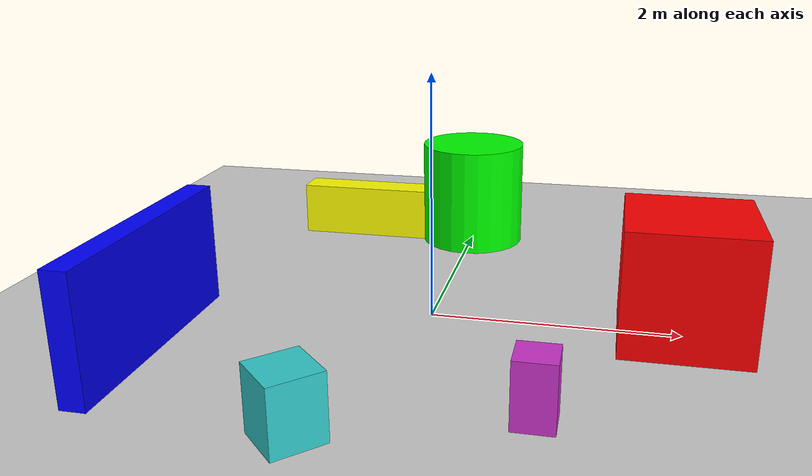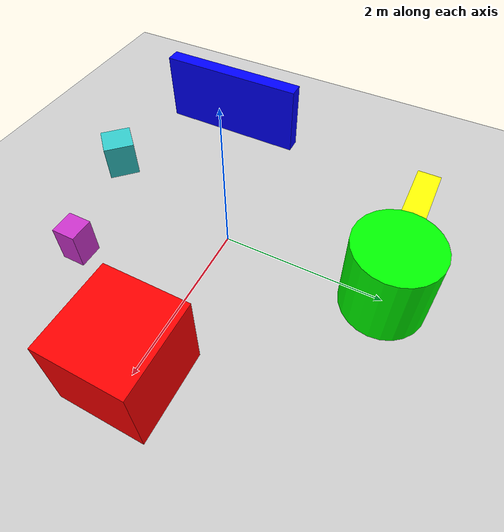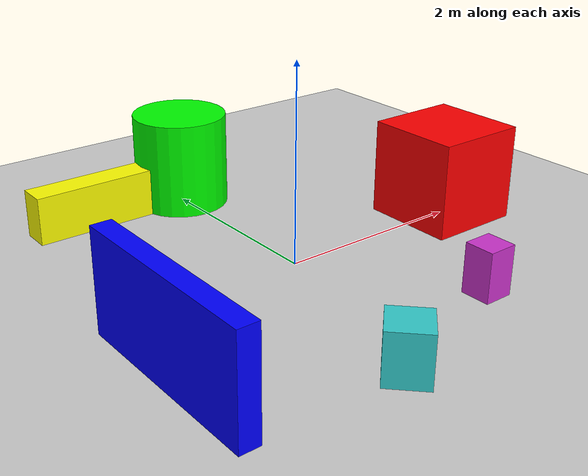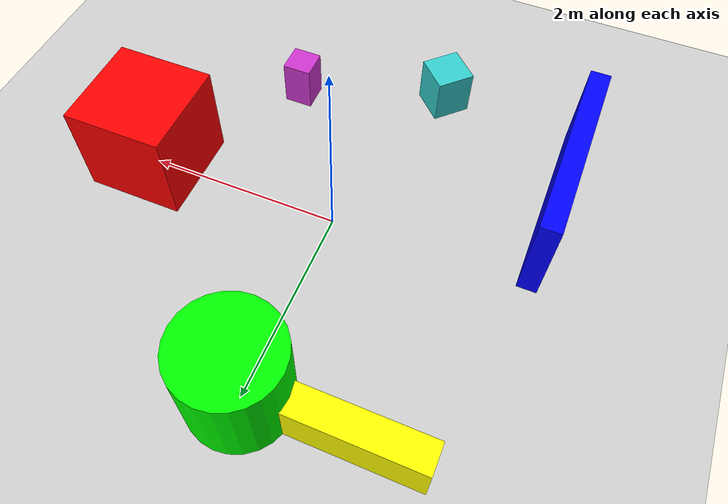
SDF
<?xml version="1.0" ?>
<sdf version="1.6">
  <world name="slam_test_classic">
    <!-- Include standard models -->
    <include>
      <uri>model://ground_plane</uri>
    </include>
    <include>
      <uri>model://sun</uri>
    </include>

    <!-- Physics settings optimized for SLAM -->
    <physics name="default" type="ode">
      <max_step_size>0.001</max_step_size>
      <real_time_factor>1.0</real_time_factor>
      <real_time_update_rate>1000</real_time_update_rate>
    </physics>

    <!-- SLAM Test Environment with Obstacles for Mapping -->

    <!-- Obstacle 1: Large box on the right -->
    <model name="obstacle_1">
      <pose>2 0 0.5 0 0 0</pose>
      <static>true</static>
      <link name="link">
        <collision name="collision">
          <geometry>
            <box>
              <size>1 1 1</size>
            </box>
          </geometry>
        </collision>
        <visual name="visual">
          <geometry>
            <box>
              <size>1 1 1</size>
            </box>
          </geometry>
          <material>
            <ambient>1.0 0.0 0.0 1</ambient>
            <diffuse>1.0 0.0 0.0 1</diffuse>
            <specular>1.0 0.0 0.0 1</specular>
          </material>
        </visual>
      </link>
    </model>

    <!-- Obstacle 2: Cylinder on the left -->
    <model name="obstacle_2">
      <pose>0 2 0.5 0 0 0</pose>
      <static>true</static>
      <link name="link">
        <collision name="collision">
          <geometry>
            <cylinder>
              <radius>0.5</radius>
              <length>1.0</length>
            </cylinder>
          </geometry>
        </collision>
        <visual name="visual">
          <geometry>
            <cylinder>
              <radius>0.5</radius>
              <length>1.0</length>
            </cylinder>
          </geometry>
          <material>
            <ambient>0.0 1.0 0.0 1</ambient>
            <diffuse>0.0 1.0 0.0 1</diffuse>
            <specular>0.0 1.0 0.0 1</specular>
          </material>
        </visual>
      </link>
    </model>

    <!-- Obstacle 3: Wall segment -->
    <model name="wall_1">
      <pose>-2 -1 0.5 0 0 0</pose>
      <static>true</static>
      <link name="link">
        <collision name="collision">
          <geometry>
            <box>
              <size>0.2 2 1</size>
            </box>
          </geometry>
        </collision>
        <visual name="visual">
          <geometry>
            <box>
              <size>0.2 2 1</size>
            </box>
          </geometry>
          <material>
            <ambient>0.0 0.0 1.0 1</ambient>
            <diffuse>0.0 0.0 1.0 1</diffuse>
            <specular>0.0 0.0 1.0 1</specular>
          </material>
        </visual>
      </link>
    </model>

    <!-- Obstacle 4: L-shaped corner structure -->
    <model name="corner_structure">
      <pose>-1 2 0.25 0 0 0</pose>
      <static>true</static>
      <link name="link">
        <collision name="collision">
          <geometry>
            <box>
              <size>1.5 0.3 0.5</size>
            </box>
          </geometry>
        </collision>
        <visual name="visual">
          <geometry>
            <box>
              <size>1.5 0.3 0.5</size>
            </box>
          </geometry>
          <material>
            <ambient>1.0 1.0 0.0 1</ambient>
            <diffuse>1.0 1.0 0.0 1</diffuse>
            <specular>1.0 1.0 0.0 1</specular>
          </material>
        </visual>
      </link>
    </model>

    <!-- Small obstacles for detailed mapping -->
    <model name="small_obstacle_1">
      <pose>1 -1.5 0.25 0 0 0</pose>
      <static>true</static>
      <link name="link">
        <collision name="collision">
          <geometry>
            <box>
              <size>0.3 0.3 0.5</size>
            </box>
          </geometry>
        </collision>
        <visual name="visual">
          <geometry>
            <box>
              <size>0.3 0.3 0.5</size>
            </box>
          </geometry>
          <material>
            <ambient>0.8 0.2 0.8 1</ambient>
            <diffuse>0.8 0.2 0.8 1</diffuse>
            <specular>0.8 0.2 0.8 1</specular>
          </material>
        </visual>
      </link>
    </model>

    <model name="small_obstacle_2">
      <pose>-0.5 -2 0.25 0 0 0.785</pose>
      <static>true</static>
      <link name="link">
        <collision name="collision">
          <geometry>
            <box>
              <size>0.4 0.4 0.5</size>
            </box>
          </geometry>
        </collision>
        <visual name="visual">
          <geometry>
            <box>
              <size>0.4 0.4 0.5</size>
            </box>
          </geometry>
          <material>
            <ambient>0.2 0.8 0.8 1</ambient>
            <diffuse>0.2 0.8 0.8 1</diffuse>
            <specular>0.2 0.8 0.8 1</specular>
          </material>
        </visual>
      </link>
    </model>

  </world>
</sdf>
